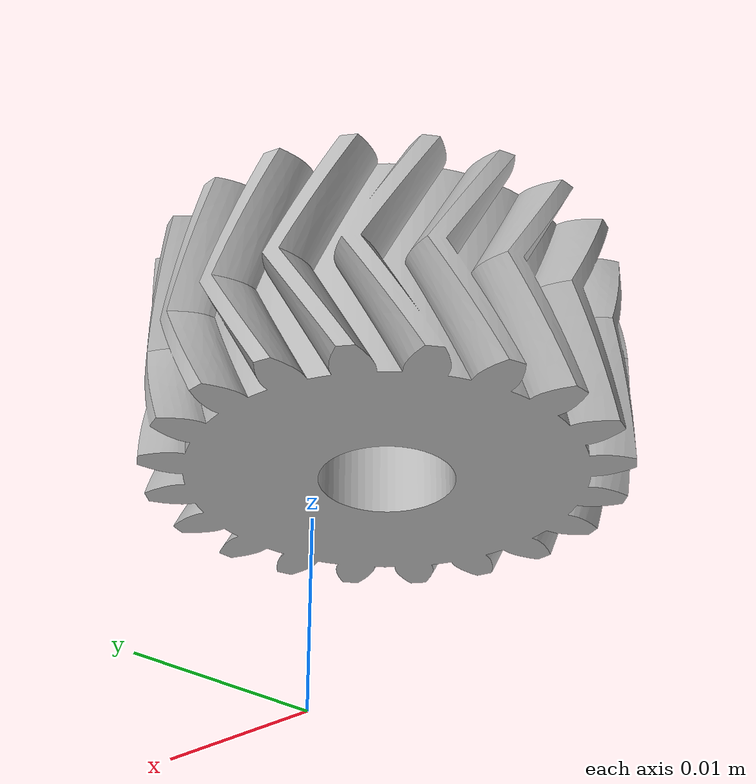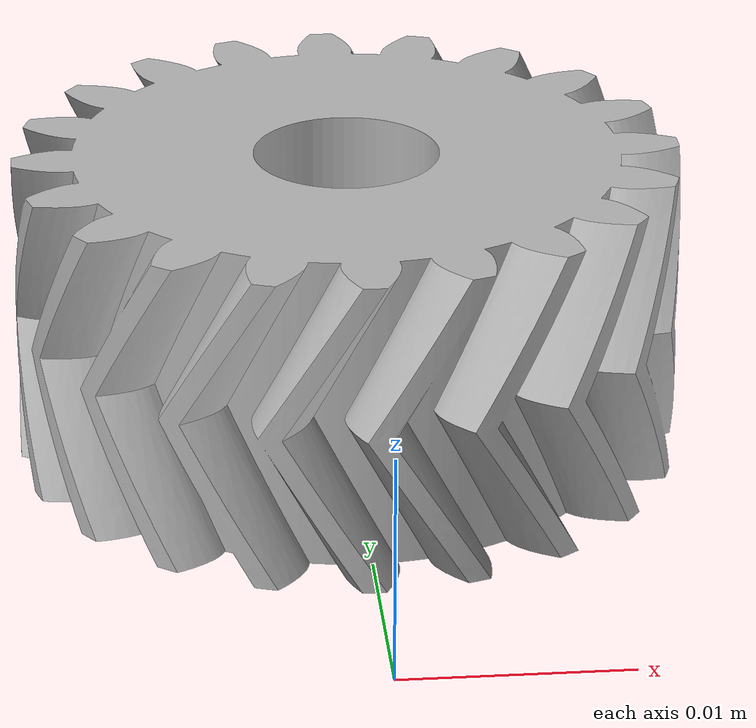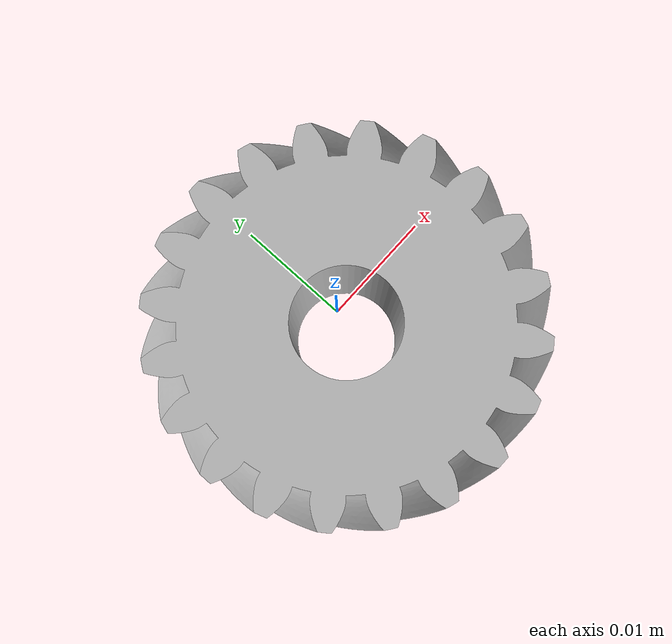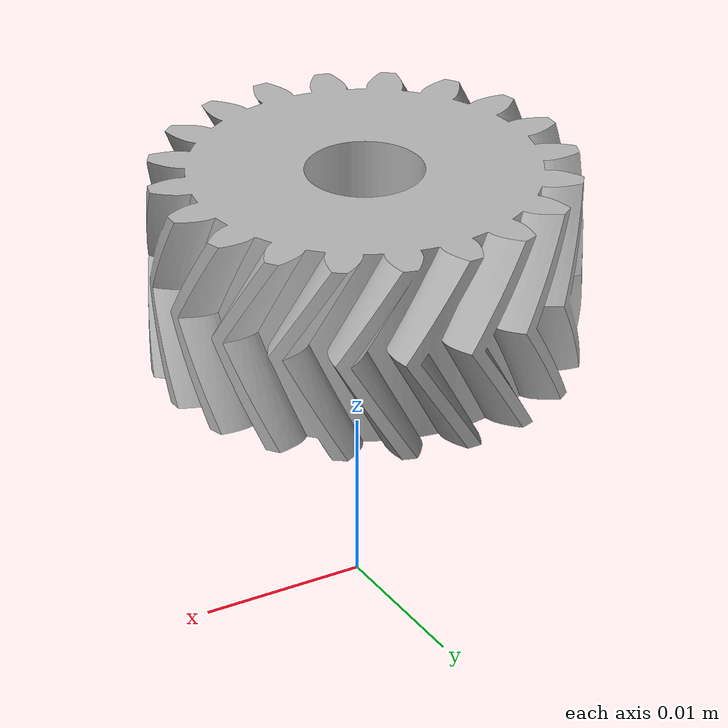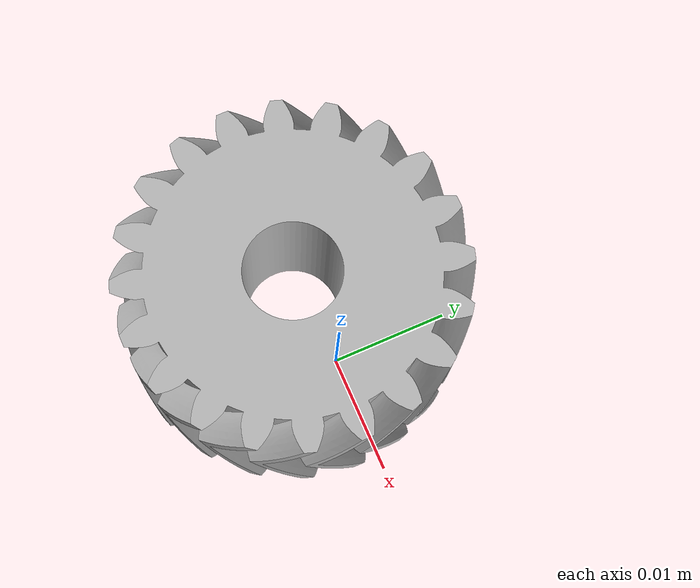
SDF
<?xml version="1.0" ?>
<sdf version="1.5">
  <model name="left_gear">
    <static>false</static>
    <link name="link">
      <collision name="collision">
        <geometry>
          <mesh>
            <scale>0.001 0.001 0.001</scale>
            <uri>file://left_gear/meshes/left_gear.dae</uri>
          </mesh>
        </geometry>
      </collision>
      <visual name="visual">
        <geometry>
          <mesh>
            <scale>0.001 0.001 0.001</scale>
            <uri>file://left_gear/meshes/left_gear.dae</uri>
          </mesh>
        </geometry>
      </visual>
    </link>
  </model>
</sdf>
